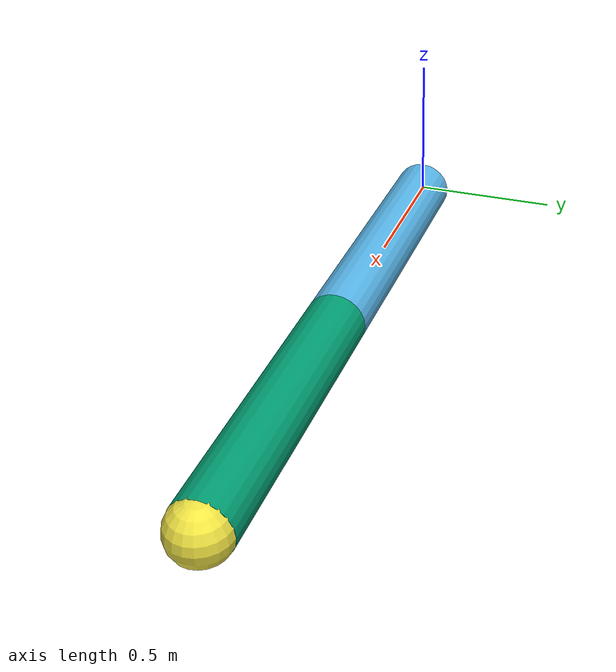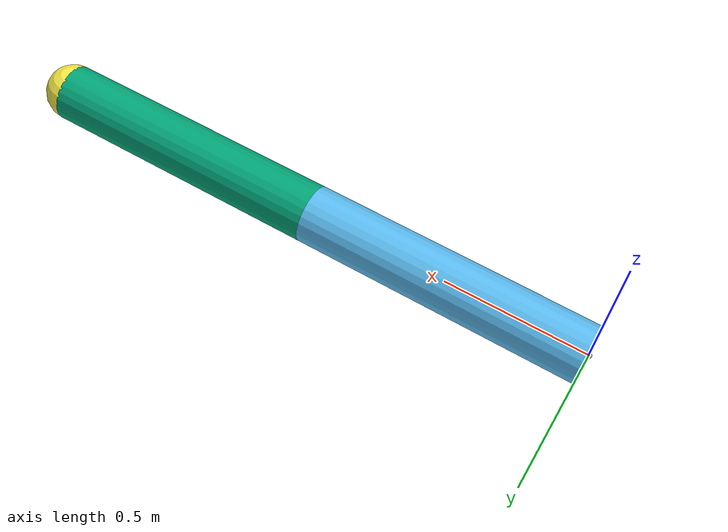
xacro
<?xml version="1.0" encoding="utf-8"?>
<robot name="robot_series_two" xmlns:xacro="http://www.ros.org/wiki/xacro">
<!--all parament*******************************************************************************************-->
   <xacro:include filename="simple_model.xacro" />

<!--Robot Model*******************************************************************************************-->

  <link name="base">
    <xacro:sphere0_model m="1.0" r="0.01"></xacro:sphere0_model>
  </link>
  <link name="link1">
    <xacro:cylinder_model px="0.5" py="0.0" pz="0.0" wx="0.0" wy="${pi/2}" wz="0.0"
                           m="1.0" r="0.1" h="1.0"></xacro:cylinder_model>
  </link>
  <link name="link2">
    <xacro:cylinder_model px="0.5" py="0.0" pz="0.0" wx="0.0" wy="${pi/2}" wz="0.0"
                           m="1.0" r="0.1" h="1.0"></xacro:cylinder_model>
  </link>
  <link name="end">
    <xacro:sphere_model px="0.0" py="0.0" pz="0.0" wx="0.0" wy="0.0" wz="0.0"
                         m="1.0" r="0.1"></xacro:sphere_model>
  </link>

  <joint name="joint0" type="revolute">
    <origin xyz="0 0 0" rpy="0 0 0 " />
    <parent link="base" />
    <child link="link1" />
    <axis xyz="0 0 1" />
    <dynamics damping="0.01" friction="0.01"/>
    <limit effort="50" velocity="${2*pi}" lower="${-pi/2}" upper="${pi/2}"/>
    <!--safety_controller k_velocity="" k_position="" soft_lower_limit="" soft_upper_limit=""/-->
  </joint>
  <joint name="joint1" type="revolute">
    <origin xyz="1.0 0 0" rpy="0 0 0 " />
    <parent link="link1" />
    <child link="link2" />
    <axis xyz="0 0 1" />
    <dynamics damping="0.01" friction="0.01"/>
    <limit effort="50" velocity="${2*pi}" lower="${-pi/2}" upper="${pi/2}"/>
    <!--safety_controller k_velocity="" k_position="" soft_lower_limit="" soft_upper_limit=""/-->
  </joint>
  <joint name="joint_e" type="fixed">
    <origin xyz="1.0 0 0.0" rpy="0 0 0 " />
    <parent link="link2" />
    <child link="end" />
  </joint>

</robot>

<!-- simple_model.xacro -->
<robot name="simple_model" xmlns:xacro="http://www.ros.org/wiki/xacro">

<!--Sphere Model*******************************************************************************************-->
<!--球转动惯量的参数化-->
<xacro:macro name="sphere_inertial" params="m r">
  <mass value="${m}" />
  <inertia  ixx="${2.0*m*r*r/5.0}" ixy="0.00" ixz="0.00"
            iyy="${2.0*m*r*r/5.0}" iyz="0"
            izz="${2.0*m*r*r/5.0}" />
</xacro:macro>
<xacro:macro name="sphere_model" params="px py pz wx wy wz m r">
    <inertial>
      <origin xyz="${px} ${py} ${pz}" rpy="${wx} ${wy} ${wz}"/>
      <xacro:sphere_inertial m="${m}" r="${r}"></xacro:sphere_inertial>
    </inertial>
    <visual>
      <origin xyz="${px} ${py} ${pz}" rpy="${wx} ${wy} ${wz}"/>
      <geometry> <sphere radius="${r}"/></geometry>
    </visual>
    <collision>
      <origin xyz="${px} ${py} ${pz}" rpy="${wx} ${wy} ${wz}"/>
      <geometry> <sphere radius="${r}"/></geometry>
    </collision>
</xacro:macro>
<xacro:macro name="sphere0_model" params="m r">
    <xacro:sphere_model px="0" py="0" pz="0" wx="0" wy="0" wz="0" m="${m}" r="${r}"></xacro:sphere_model>
</xacro:macro>
<!--Cylinder Model*******************************************************************************************-->
<!--圆柱转动惯量的参数化-->
<xacro:macro name="cylinder_inertial" params="m r h">
  <mass value="${m}" />
  <inertia  ixx="${m*(3*r*r+h*h)/12.0}" ixy="0.00" ixz="0.00"
            iyy="${m*(3*r*r+h*h)/12.0}" iyz="0"
            izz="${m*r*r/2.0}" />
</xacro:macro>
<xacro:macro name="cylinder_model" params="px py pz wx wy wz m r h">
    <inertial>
      <origin xyz="${px} ${py} ${pz}" rpy="${wx} ${wy} ${wz}"/>
      <xacro:cylinder_inertial m="${m}" r="${r}" h="${h}"></xacro:cylinder_inertial>
    </inertial>
    <visual>
      <origin xyz="${px} ${py} ${pz}" rpy="${wx} ${wy} ${wz}"/>
      <geometry> <cylinder length="${h}" radius="${r}" /></geometry>
    </visual>
    <collision>
      <origin xyz="${px} ${py} ${pz}" rpy="${wx} ${wy} ${wz}"/>
      <geometry> <cylinder length="${h}" radius="${r}"/></geometry>
    </collision>
</xacro:macro>
<xacro:macro name="cylinder0_model" params="m r h">
    <xacro:cylinder_model px="0" py="0" pz="0" wx="0" wy="0" wz="0" m="${m}" r="${r}" h="${h}"></xacro:cylinder_model>
</xacro:macro>
<!--Sphere Model*******************************************************************************************-->
<!--立方体转动惯量的参数化-->
<xacro:macro name="box_inertial" params="m x y z">
  <mass value="${m}" />
  <inertia  ixx="${m*(y*y+z*z)/12.0}" ixy="0.00" ixz="0.00"
            iyy="${m*(x*x+z*z)/12.0}" iyz="0"
            izz="${m*(x*x+y*y)/12.0}" />
</xacro:macro>
<xacro:macro name="box_model" params="px py pz wx wy wz m x y z">
    <inertial>
      <origin xyz="${px} ${py} ${pz}" rpy="${wx} ${wy} ${wz}"/>
      <xacro:box_inertial m="${m}" x="${x}" y="${y}" z="${z}"></xacro:box_inertial>
    </inertial>
    <visual>
      <origin xyz="${px} ${py} ${pz}" rpy="${wx} ${wy} ${wz}"/>
      <geometry> <box size="${x} ${y} ${z}"/></geometry>
    </visual>
    <collision>
      <origin xyz="${px} ${py} ${pz}" rpy="${wx} ${wy} ${wz}"/>
      <geometry> <box size="${x} ${y} ${z}"/></geometry>
    </collision>
</xacro:macro>
<xacro:macro name="box0_model" params="m x y z">
    <xacro:box_model px="0" py="0" pz="0" wx="0" wy="0" wz="0" m="${m}" x="${x}" y="${y}" z="${z}"></xacro:box_model>
</xacro:macro>

</robot>
